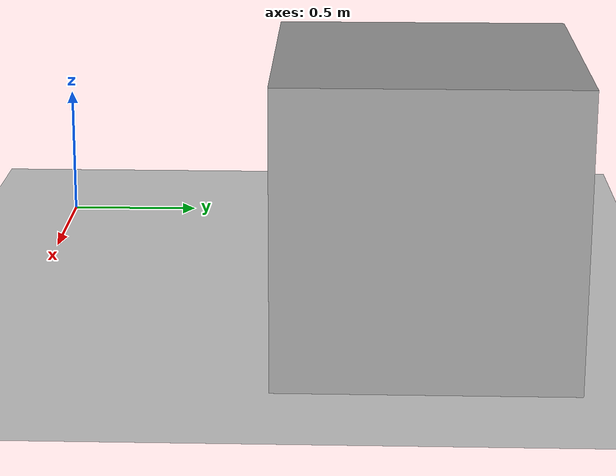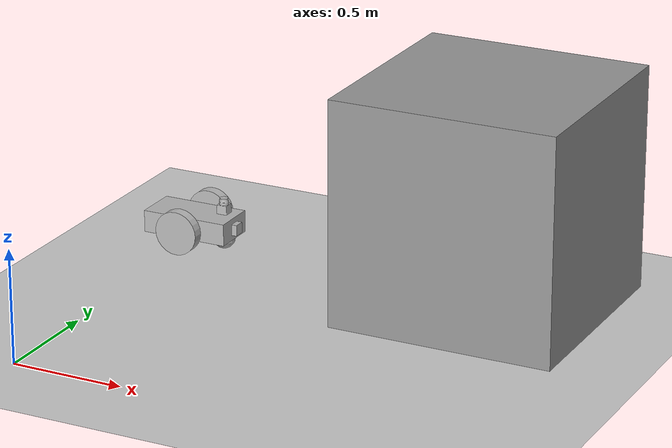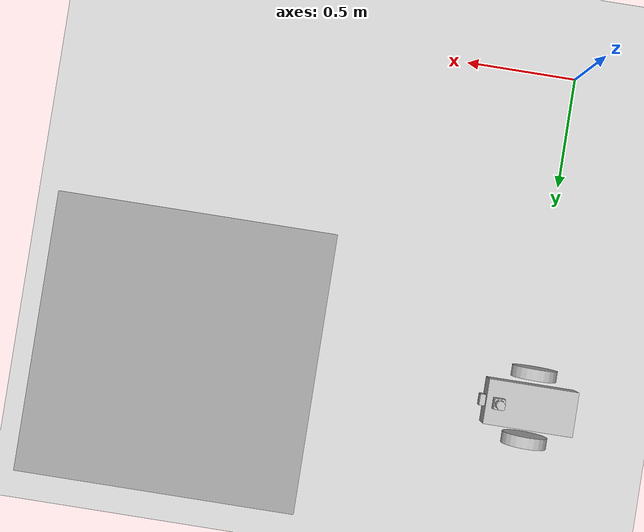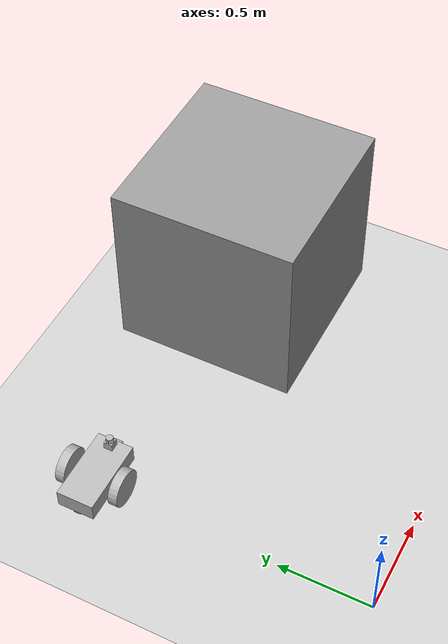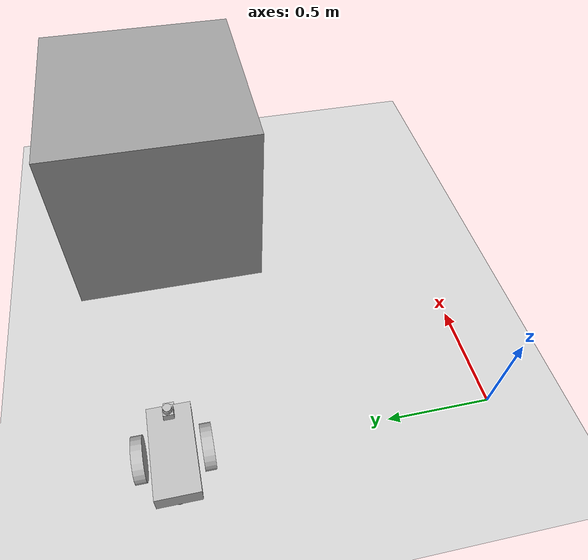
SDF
<sdf version="1.6">
 <world name="default">
  <model name="ground_plane">
   <static>1</static>
   <link name="link">
    <collision name="collision">
     <geometry><plane><normal>0 0 1</normal><size>100 100</size></plane></geometry>
     <surface>
      <contact><collide_bitmask>65535</collide_bitmask></contact>
      <friction><ode><mu>100</mu><mu2>50</mu2></ode></friction>
     </surface>
    </collision>
    <visual name="visual">
     <cast_shadows>0</cast_shadows>
     <geometry><plane><normal>0 0 1</normal><size>100 100</size></plane></geometry>
     <material>
      <script><uri>file://media/materials/scripts/gazebo.material</uri><name>Gazebo/Grey</name></script>
     </material>
    </visual>
   </link>
  </model>
  <light name="sun" type="directional">
   <pose>0 0 10 0 -0 0</pose>
   <diffuse>0.8 0.8 0.8 1</diffuse>
   <specular>0.2 0.2 0.2 1</specular>
   <attenuation>
    <range>1000</range>
    <constant>0.9</constant>
    <linear>0.01</linear>
    <quadratic>0.001</quadratic>
   </attenuation>
   <direction>-0.5 0.1 -0.9</direction>
  </light>
  <gravity>0 0 -9.8</gravity>
  <magnetic_field>6e-06 2.3e-05 -4.2e-05</magnetic_field>
  <atmosphere type="adiabatic"/>
  <physics name="default_physics" default="0" type="ode">
   <max_step_size>0.001</max_step_size>
   <real_time_factor>1</real_time_factor>
   <real_time_update_rate>1000</real_time_update_rate>
  </physics>
  <scene><ambient>0.4 0.4 0.4 1</ambient><background>0.7 0.7 0.7 1</background><shadows>1</shadows></scene>
  <spherical_coordinates>
   <surface_model>EARTH_WGS84</surface_model>
   <latitude_deg>0</latitude_deg>
   <longitude_deg>0</longitude_deg>
   <elevation>0</elevation>
   <heading_deg>0</heading_deg>
  </spherical_coordinates>
  <model name="my_robot">
   <link name="robot_footprint">
    <inertial>
     <pose>0.001656 1.50033 0.000331 0 -0 0</pose>
     <mass>15.1</mass>
     <inertia>
      <ixx>0.100499</ixx>
      <ixy>-0.00124172</ixy>
      <ixz>-0.00124187</ixz>
      <iyy>0.106459</iyy>
      <iyz>-0.000248344</iyz>
      <izz>0.106459</izz>
     </inertia>
    </inertial>
    <collision name="robot_footprint_fixed_joint_lump__collision_collision">
     <pose>0 1.5 0 0 -0 0</pose>
     <geometry><box><size>0.4 0.2 0.1</size></box></geometry>
    </collision>
    <collision name="robot_footprint_fixed_joint_lump__back_caster_collision_collision_1">
     <pose>-0.15 1.5 -0.05 0 -0 0</pose>
     <geometry><sphere><radius>0.0499</radius></sphere></geometry>
    </collision>
    <collision name="robot_footprint_fixed_joint_lump__front_caster_collision_collision_2">
     <pose>0.15 1.5 -0.05 0 -0 0</pose>
     <geometry><sphere><radius>0.0499</radius></sphere></geometry>
    </collision>
    <collision name="robot_footprint_fixed_joint_lump__collision_collision_3">
     <pose>0.2 1.5 0 0 -0 0</pose>
     <geometry><box><size>0.05 0.05 0.05</size></box></geometry>
    </collision>
    <collision name="robot_footprint_fixed_joint_lump__collision_collision_4">
     <pose>0.15 1.5 0.1 0 -0 0</pose>
     <geometry><box><size>0.1 0.1 0.1</size></box></geometry>
    </collision>
    <visual name="robot_footprint_fixed_joint_lump__chassis_visual_visual">
     <pose>0 1.5 0 0 -0 0</pose>
     <geometry><box><size>0.4 0.2 0.1</size></box></geometry>
    </visual>
    <visual name="robot_footprint_fixed_joint_lump__back_caster_visual_visual_1">
     <pose>-0.15 1.5 -0.05 0 -0 0</pose>
     <geometry><sphere><radius>0.05</radius></sphere></geometry>
    </visual>
    <visual name="robot_footprint_fixed_joint_lump__front_caster_visual_visual_2">
     <pose>0.15 1.5 -0.05 0 -0 0</pose>
     <geometry><sphere><radius>0.05</radius></sphere></geometry>
    </visual>
    <visual name="robot_footprint_fixed_joint_lump__visual_visual_3">
     <pose>0.2 1.5 0 0 -0 0</pose>
     <geometry><box><size>0.05 0.05 0.05</size></box></geometry>
    </visual>
    <visual name="robot_footprint_fixed_joint_lump__visual_visual_4">
     <pose>0.15 1.5 0.1 0 -0 0</pose>
     <geometry>
      <mesh><scale>1 1 1</scale><uri>/home/workspace/catkin_ws/src/my_robot/meshes/hokuyo.dae</uri></mesh>
     </geometry>
    </visual>
    <sensor name="camera1" type="camera">
     <update_rate>30</update_rate>
     <camera name="head">
      <horizontal_fov>1.39626</horizontal_fov>
      <image><width>800</width><height>800</height><format>R8G8B8</format></image>
      <clip><near>0.02</near><far>300</far></clip>
     </camera>
     <plugin name="camera_controller" filename="libgazebo_ros_camera.so">
      <alwaysOn>true</alwaysOn>
      <updateRate>0.0</updateRate>
      <cameraName>camera</cameraName>
      <imageTopicName>rgb/image_raw</imageTopicName>
      <cameraInfoTopicName>rgb/camera_info</cameraInfoTopicName>
      <frameName>camera</frameName>
      <hackBaseline>0.07</hackBaseline>
      <distortionK1>0.0</distortionK1>
      <distortionK2>0.0</distortionK2>
      <distortionK3>0.0</distortionK3>
      <distortionT1>0.0</distortionT1>
      <distortionT2>0.0</distortionT2>
      <robotNamespace>/</robotNamespace>
     </plugin>
     <pose>0.2 1.5 0 0 -0 0</pose>
    </sensor>
    <sensor name="head_hokuyo_sensor" type="ray">
     <visualize>0</visualize>
     <update_rate>40</update_rate>
     <ray>
      <scan>
       <horizontal>
        <samples>720</samples>
        <resolution>1</resolution>
        <min_angle>-1.5708</min_angle>
        <max_angle>1.5708</max_angle>
       </horizontal>
       <vertical><samples>1</samples><min_angle>0</min_angle><max_angle>0</max_angle></vertical>
      </scan>
      <range><min>0.1</min><max>30</max><resolution>0.01</resolution></range>
      <noise><type>gaussian</type><mean>0</mean><stddev>0.01</stddev></noise>
     </ray>
     <plugin name="gazebo_ros_head_hokuyo_controller" filename="libgazebo_ros_laser.so">
      <topicName>/scan</topicName>
      <frameName>hokuyo</frameName>
      <robotNamespace>/</robotNamespace>
     </plugin>
     <pose>0.15 1.5 0.1 0 -0 0</pose>
    </sensor>
   </link>
   <link name="left_wheel">
    <pose>0 1.65 0 0 -0 0</pose>
    <inertial>
     <mass>5</mass>
     <inertia><ixx>0.1</ixx><ixy>0</ixy><ixz>0</ixz><iyy>0.1</iyy><iyz>0</iyz><izz>0.1</izz></inertia>
    </inertial>
    <collision name="left_wheel_fixed_joint_lump__collision_collision">
     <pose>0 0 0 3.14159 1.57079 -1.57089</pose>
     <geometry><cylinder><length>0.05</length><radius>0.1</radius></cylinder></geometry>
    </collision>
    <visual name="left_wheel_fixed_joint_lump__visual_visual">
     <pose>0 0 0 3.14159 1.57079 -1.57089</pose>
     <geometry><cylinder><length>0.05</length><radius>0.1</radius></cylinder></geometry>
    </visual>
   </link>
   <joint name="left_wheel_joint" type="revolute">
    <child>left_wheel</child>
    <parent>robot_footprint</parent>
    <axis>
     <xyz>0 1 0</xyz>
     <limit><lower>-1e+16</lower><upper>1e+16</upper></limit>
     <dynamics>
      <damping>1</damping>
      <friction>1</friction>
      <spring_reference>0</spring_reference>
      <spring_stiffness>0</spring_stiffness>
     </dynamics>
     <use_parent_model_frame>1</use_parent_model_frame>
    </axis>
   </joint>
   <link name="right_wheel">
    <pose>0 1.35 0 0 -0 0</pose>
    <inertial>
     <mass>5</mass>
     <inertia><ixx>0.1</ixx><ixy>0</ixy><ixz>0</ixz><iyy>0.1</iyy><iyz>0</iyz><izz>0.1</izz></inertia>
    </inertial>
    <collision name="right_wheel_fixed_joint_lump__collision_collision">
     <pose>0 0 0 3.14159 1.57079 -1.57089</pose>
     <geometry><cylinder><length>0.05</length><radius>0.1</radius></cylinder></geometry>
    </collision>
    <visual name="right_wheel_fixed_joint_lump__visual_visual">
     <pose>0 0 0 3.14159 1.57079 -1.57089</pose>
     <geometry><cylinder><length>0.05</length><radius>0.1</radius></cylinder></geometry>
    </visual>
   </link>
   <joint name="right_wheel_joint" type="revolute">
    <child>right_wheel</child>
    <parent>robot_footprint</parent>
    <axis>
     <xyz>0 1 0</xyz>
     <limit><lower>-1e+16</lower><upper>1e+16</upper></limit>
     <dynamics>
      <damping>1</damping>
      <friction>1</friction>
      <spring_reference>0</spring_reference>
      <spring_stiffness>0</spring_stiffness>
     </dynamics>
     <use_parent_model_frame>1</use_parent_model_frame>
    </axis>
   </joint>
   <static>0</static>
   <plugin name="differential_drive_controller" filename="libgazebo_ros_diff_drive.so">
    <legacyMode>false</legacyMode>
    <alwaysOn>true</alwaysOn>
    <updateRate>10</updateRate>
    <leftJoint>left_wheel_hinge</leftJoint>
    <rightJoint>right_wheel_hinge</rightJoint>
    <wheelSeparation>0.4</wheelSeparation>
    <wheelDiameter>0.2</wheelDiameter>
    <torque>10</torque>
    <commandTopic>cmd_vel</commandTopic>
    <odometryTopic>odom</odometryTopic>
    <odometryFrame>odom</odometryFrame>
    <robotBaseFrame>robot_footprint</robotBaseFrame>
    <publishWheelTF>false</publishWheelTF>
    <publishWheelJointState>false</publishWheelJointState>
    <rosDebugLevel>na</rosDebugLevel>
    <wheelAcceleration>0</wheelAcceleration>
    <wheelTorque>5</wheelTorque>
    <odometrySource>world</odometrySource>
    <publishTf>1</publishTf>
    <publishOdomTF>true</publishOdomTF>
    <robotNamespace>/</robotNamespace>
   </plugin>
   <pose>-7.1e-05 -0.001072 0.099979 1.1e-05 -5.4e-05 -8.7e-05</pose>
  </model>
  <model name="box">
   <link name="link_0">
    <pose>-1e-06 4e-06 0 0 -0 0</pose>
    <inertial>
     <mass>1</mass>
     <inertia>
      <ixx>0.166667</ixx>
      <ixy>0</ixy>
      <ixz>0</ixz>
      <iyy>0.166667</iyy>
      <iyz>0</iyz>
      <izz>0.166667</izz>
     </inertia>
    </inertial>
    <visual name="visual">
     <geometry><box><size>1 1 1</size></box></geometry>
     <material>
      <lighting>1</lighting>
      <script><uri>file://media/materials/scripts/gazebo.material</uri><name>Gazebo/Grey</name></script>
      <shader type="pixel"/>
      <ambient>0.3 0.3 0.3 1</ambient>
      <diffuse>0.7 0.7 0.7 1</diffuse>
      <specular>0.01 0.01 0.01 1</specular>
      <emissive>0 0 0 1</emissive>
     </material>
    </visual>
    <collision name="collision">
     <geometry><box><size>1 1 1</size></box></geometry>
     <surface>
      <friction>
       <ode><mu>1</mu><mu2>1</mu2><fdir1>0 0 0</fdir1><slip1>0</slip1><slip2>0</slip2></ode>
       <torsional>
        <coefficient>1</coefficient>
        <patch_radius>0</patch_radius>
        <surface_radius>0</surface_radius>
        <use_patch_radius>1</use_patch_radius>
        <ode><slip>0</slip></ode>
       </torsional>
      </friction>
      <bounce><restitution_coefficient>0</restitution_coefficient><threshold>1e+06</threshold></bounce>
      <contact>
       <collide_without_contact>0</collide_without_contact>
       <collide_without_contact_bitmask>1</collide_without_contact_bitmask>
       <collide_bitmask>1</collide_bitmask>
       <ode>
        <soft_cfm>0</soft_cfm>
        <soft_erp>0.2</soft_erp>
        <kp>1e+13</kp>
        <kd>1</kd>
        <max_vel>0.01</max_vel>
        <min_depth>0</min_depth>
       </ode>
       <bullet>
        <split_impulse>1</split_impulse>
        <split_impulse_penetration_threshold>-0.01</split_impulse_penetration_threshold>
        <soft_cfm>0</soft_cfm>
        <soft_erp>0.2</soft_erp>
        <kp>1e+13</kp>
        <kd>1</kd>
       </bullet>
      </contact>
     </surface>
    </collision>
   </link>
   <static>0</static>
   <pose>1.46414 1.40611 0.5 0 -0 0</pose>
  </model>
 </world>
</sdf>
